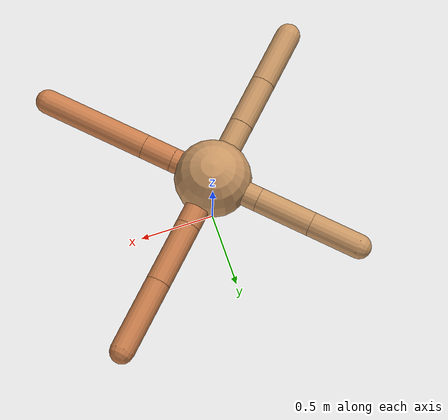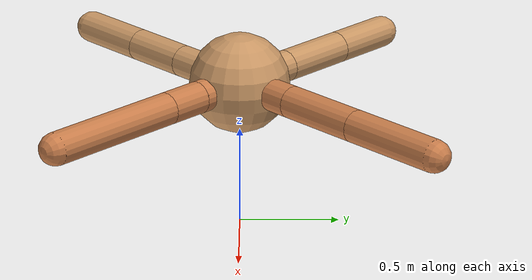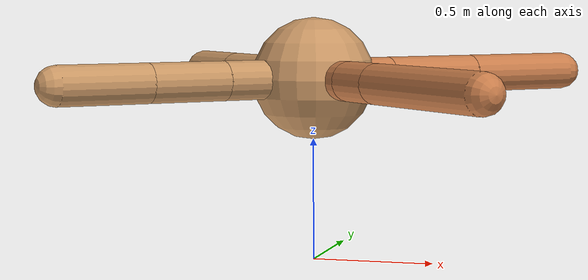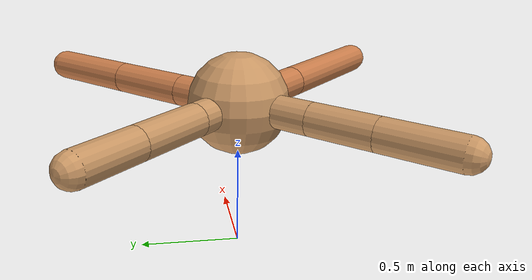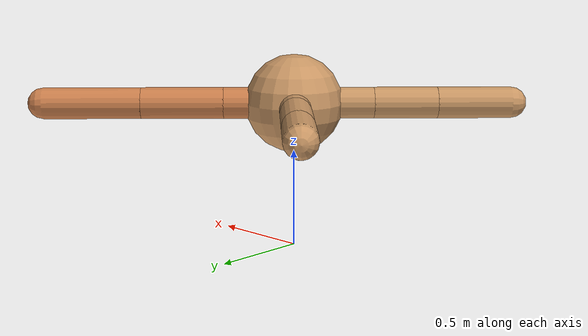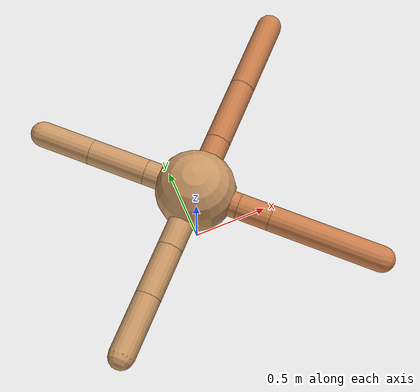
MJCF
<mujoco model="ant">
  <compiler angle="degree" coordinate="local" inertiafromgeom="true" />
  <option integrator="RK4" timestep="0.01" />
  <custom>
    <numeric data="0.0 0.0 0.55 1.0 0.0 0.0 0.0 0.0 1.0 0.0 -1.0 0.0 -1.0 0.0 1.0" name="init_qpos" />
  </custom>
  <default>
    <joint armature="1" damping="1" limited="true" />
    <geom conaffinity="0" condim="3" density="5.0" friction="1.5 0.1 0.1" margin="0.01" rgba="0.8 0.6 0.4 1" />
  </default>
  <worldbody>
    <body name="torso" pos="0 0 0.75">
      <geom name="torso_geom" pos="0 0 0" size="0.25" type="sphere" />

      <body name="front_left_leg" pos="0 0 0">
        <geom fromto="0.0 0.0 0.0 0.2548511567306408 0.2548511567306408 0.0" name="aux_1_geom" size="0.08" type="capsule" rgba=".8 .5 .3 1" />
        <body name="aux_1" pos="0.2548511567306408 0.2548511567306408 0.0">
          <joint axis="0 0 1" name="hip_1" pos="0.0 0.0 0.0" range="-40 40" type="hinge" />
          <geom fromto="0.0 0.0 0.0 0.29697078280156014 0.29697078280156014 0.0" name="left_leg_geom" size="0.08" type="capsule" rgba=".8 .5 .3 1" />
          <body pos="0.29697078280156014 0.29697078280156014 0.0" name="front_left_foot">
            <joint axis="-1 1 0" name="ankle_1" pos="0.0 0.0 0.0" range="30 100" type="hinge" />
            <geom fromto="0.0 0.0 0.0 0.35195282378018766 0.35195282378018766 0.0" name="left_ankle_geom" size="0.08" type="capsule" rgba=".8 .5 .3 1" />
          </body>
        </body>
      </body>
      <body name="front_right_leg" pos="0 0 0">
        <geom fromto="0.0 0.0 0.0 -0.23051983607694743 0.23051983607694743 0.0" name="aux_2_geom" size="0.08" type="capsule" />
        <body name="aux_2" pos="-0.23051983607694743 0.23051983607694743 0.0">
          <joint axis="0 0 1" name="hip_2" pos="0.0 0.0 0.0" range="-40 40" type="hinge" />
          <geom fromto="0.0 0.0 0.0 -0.2621835985139979 0.2621835985139979 0.0" name="right_leg_geom" size="0.08" type="capsule" />
          <body pos="-0.2621835985139979 0.2621835985139979 0.0" name="front_right_foot">
            <joint axis="1 1 0" name="ankle_2" pos="0.0 0.0 0.0" range="-100 -30" type="hinge" />
            <geom fromto="0.0 0.0 0.0 -0.23649016247343294 0.23649016247343294 0.0" name="right_ankle_geom" size="0.08" type="capsule" />
          </body>
        </body>
      </body>
      <body name="left_back_leg" pos="0 0 0">
        <geom fromto="0.0 0.0 0.0 -0.28810076558175207 -0.28810076558175207 0.0" name="aux_3_geom" size="0.08" type="capsule" />
        <body name="aux_3" pos="-0.28810076558175207 -0.28810076558175207 0.0">
          <joint axis="0 0 1" name="hip_3" pos="0.0 0.0 0.0" range="-40 40" type="hinge" />
          <geom fromto="0.0 0.0 0.0 -0.22962445570401152 -0.22962445570401152 0.0" name="back_leg_geom" size="0.08" type="capsule" />
          <body pos="-0.22962445570401152 -0.22962445570401152 0.0" name="left_back_foot">
            <joint axis="-1 1 0" name="ankle_3" pos="0.0 0.0 0.0" range="-100 -30" type="hinge" />
            <geom fromto="0.0 0.0 0.0 -0.26654592284937123 -0.26654592284937123 0.0" name="third_ankle_geom" size="0.08" type="capsule" />
          </body>
        </body>
      </body>
      <body name="right_back_leg" pos="0 0 0">
        <geom fromto="0.0 0.0 0.0 0.2 -0.2 0.0" name="aux_4_geom" size="0.08" type="capsule" rgba=".8 .5 .3 1" />
        <body name="aux_4" pos="0.2 -0.2 0.0">
          <joint axis="0 0 1" name="hip_4" pos="0.0 0.0 0.0" range="-40 40" type="hinge" />
          <geom fromto="0.0 0.0 0.0 0.14458002515956986 -0.14458002515956986 0.0" name="rightback_leg_geom" size="0.08" type="capsule" rgba=".8 .5 .3 1" />
          <body pos="0.14458002515956986 -0.14458002515956986 0.0" name="right_back_foot">
            <joint axis="1 1 0" name="ankle_4" pos="0.0 0.0 0.0" range="30 100" type="hinge" />
            <geom fromto="0.0 0.0 0.0 0.49643672472226935 -0.49643672472226935 0.0" name="fourth_ankle_geom" size="0.08" type="capsule" rgba=".8 .5 .3 1" />
          </body>
        </body>
      </body>
    </body>
  </worldbody>
  <actuator>
    <motor ctrllimited="true" ctrlrange="-1.0 1.0" joint="hip_4" gear="150" />
    <motor ctrllimited="true" ctrlrange="-1.0 1.0" joint="ankle_4" gear="150" />
    <motor ctrllimited="true" ctrlrange="-1.0 1.0" joint="hip_1" gear="150" />
    <motor ctrllimited="true" ctrlrange="-1.0 1.0" joint="ankle_1" gear="150" />
    <motor ctrllimited="true" ctrlrange="-1.0 1.0" joint="hip_2" gear="150" />
    <motor ctrllimited="true" ctrlrange="-1.0 1.0" joint="ankle_2" gear="150" />
    <motor ctrllimited="true" ctrlrange="-1.0 1.0" joint="hip_3" gear="150" />
    <motor ctrllimited="true" ctrlrange="-1.0 1.0" joint="ankle_3" gear="150" />
  </actuator>
</mujoco>
